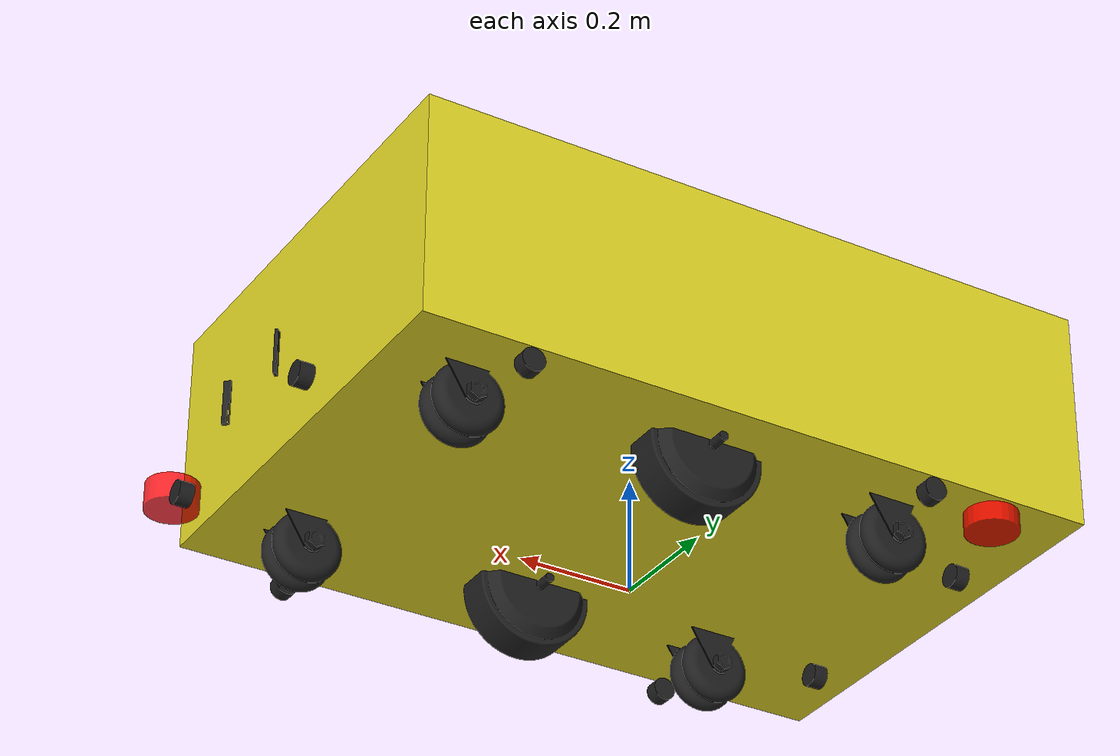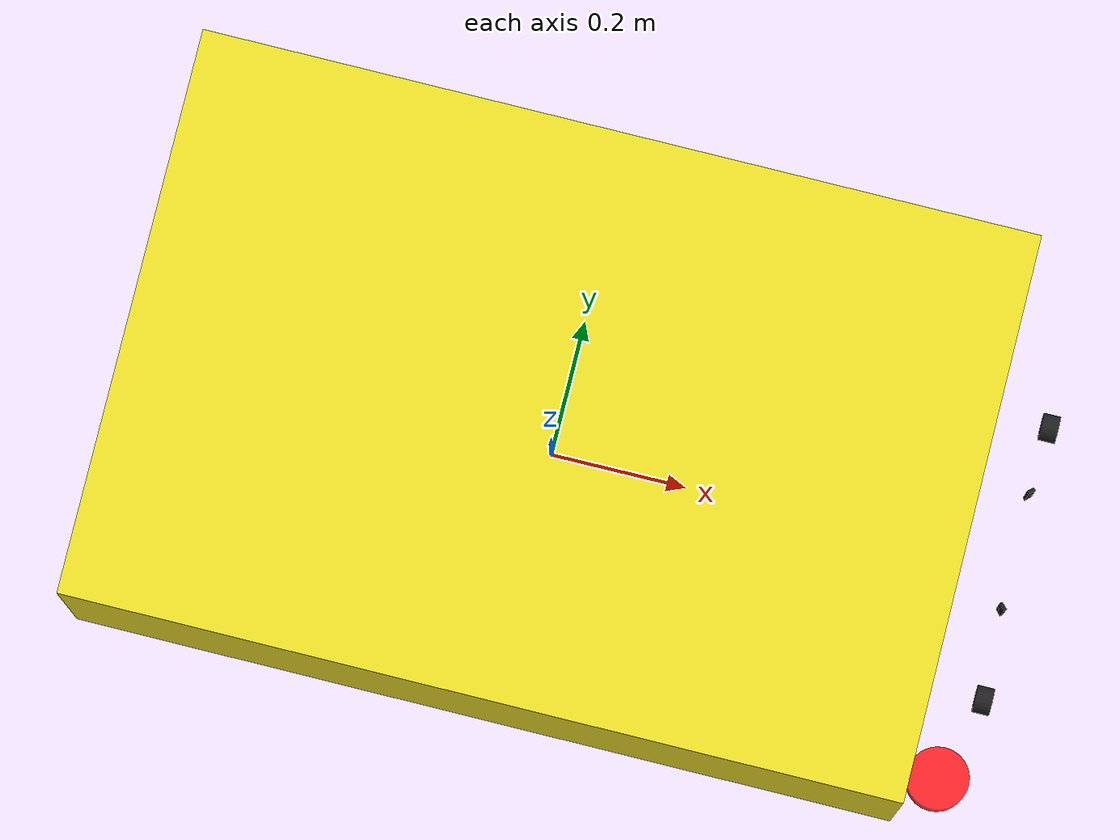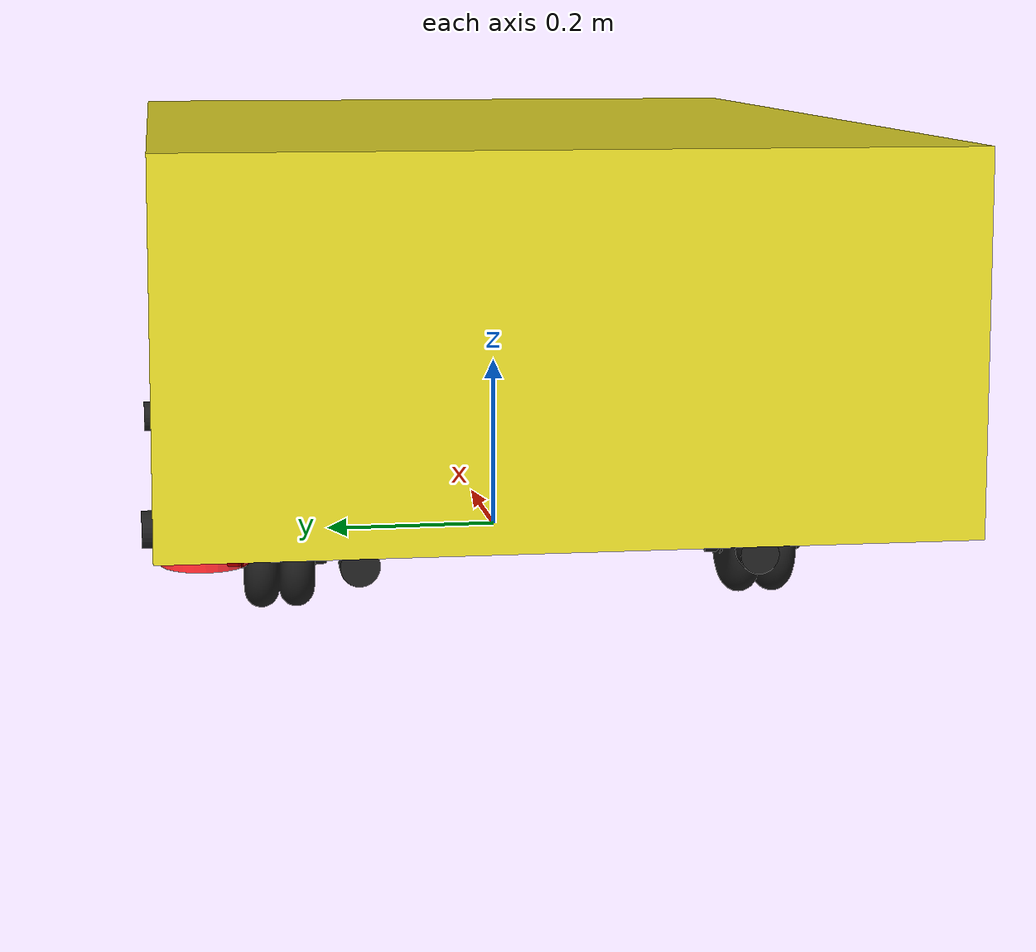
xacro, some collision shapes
<?xml version="1.0"?>
<robot name="trailobot" xmlns:xacro="http://www.ros.org/wiki/xacro">

  <xacro:arg name="GAZEBO" default="false"/>
  <xacro:arg name="wheel_odom_topic" default="odom" />
  <xacro:arg name="odometry_source" default="world" />

  <xacro:property name="odometry_source" value="$(arg odometry_source)"/>

  <!-- Includes -->
  <xacro:include filename="$(find trailobot_description)/urdf/material.xacro"/>
  <xacro:include filename="$(find trailobot_description)/urdf/const.xacro"/>
  <xacro:include filename="$(find trailobot_description)/urdf/inertia.xacro"/>
  <xacro:include filename="$(find trailobot_description)/urdf/wheel.xacro"/>
  <xacro:include filename="$(find trailobot_description)/urdf/wheel_caster.xacro"/>
  <xacro:include filename="$(find trailobot_description)/urdf/transmission.xacro"/>
  <xacro:include filename="$(find trailobot_description)/urdf/lidar.xacro"/>
  <xacro:include filename="$(find trailobot_description)/urdf/camera.xacro"/>
  <xacro:include filename="$(find trailobot_description)/urdf/ultrasonic.xacro"/>

  <xacro:if value="$(arg GAZEBO)">
    <xacro:include filename="$(find trailobot_description)/urdf/gazebo.xacro"/>
    <xacro:gz_plugins prefix="trailobot"/>
  </xacro:if>
  <xacro:unless value="$(arg GAZEBO)">
		<xacro:include filename="$(find trailobot_description)/urdf/ros2_control.xacro"/>
	</xacro:unless>

  <!-- ................................ BASE LINK .................................. -->
  <link name="base_footprint"/>

  <link name="base_link"/>

  <joint name="base_joint" type="fixed">
      <parent link="base_footprint"/>
      <child link="base_link"/>
      <origin xyz="0.0 0 ${base_height/2 + wheel_radius}" rpy="0 0 0.0" />
  </joint>

  <link name="cover_link">
      <visual>
      <origin xyz="0 0 0.0" rpy="0 0 0"/>
      <geometry>
        <box size="${base_length-0.1} ${base_width-0.02} 0.05"/>
      </geometry>
      <material name="black"/>
    </visual>
    <collision>
      <origin xyz="0 0 0" rpy="0 0 0"/>
      <geometry>
        <box size="${base_length} ${base_width-0.1} 0.02"/>
      </geometry>
    </collision>
    <xacro:box_inertia m="${mass_base}" x="${base_width/2}" y="${base_length/2}" z="${base_height/2}"/>
  </link>

  <joint name="cover_joint" type="fixed">
      <parent link="base_link"/>
      <child link="cover_link"/>
      <origin xyz="0.03 0 ${base_height/2 - 0.15}" rpy="0 0 0.0" />
  </joint>
  <!-- Base Link (main body with STL mesh) -->
  <link name="chassis_link">
    <visual>
      <origin xyz="-0.15 -0.15 0.0" rpy="${-PI/2.0} ${-PI/2.0} ${-PI/2.0}"/>
      <geometry>
        <mesh filename="file://$(find trailobot_description)/meshes/base_link.stl" scale="0.001 0.001 0.001"/>
      </geometry>
      <material name="yellow"/>
    </visual>
    <collision>
      <origin xyz="0 0 0" rpy="0 0 0"/>
      <geometry>
        <box size="${base_length} ${base_width} ${base_height}"/>
      </geometry>
    </collision>
    <xacro:box_inertia m="${mass_base}" x="${base_width/2}" y="${base_length/2}" z="${base_height/2}"/>
  </link>

  <joint name="chassis_joint" type="fixed">
      <parent link="base_link"/>
      <child link="chassis_link"/>
      <origin xyz="0.0 0 0" rpy="0 0 0.0" />
  </joint>

  <joint name="imu_joint" type="fixed">
		<parent link="base_link"/>
		<child link="imu_link"/>
		<origin rpy="0 0 0" xyz="0 0 0"/>
	</joint>

	<link name="imu_link">
		<inertial>
			<mass value="0.001"/>
			<origin rpy="0 0 0" xyz="0 0 0"/>
			<inertia ixx="0.0001" ixy="0" ixz="0" iyy="0.0001" iyz="0" izz="0.0001"/>
		</inertial>
		<visual>
			<origin rpy="0 0 0" xyz="0 0 0"/>
			<geometry>
				<box size="0.001 0.001 0.001"/>
			</geometry>
			<material name="red"/>
		</visual>
		<collision>
			<origin rpy="0 0 0" xyz="0 0 0"/>
			<geometry>
				<box size=".001 .001 .001"/>
			</geometry>
		</collision>
	</link>

  <!-- Wheels (STL-based, mirrored inside wheel.xacro) -->
  <xacro:wheel name="left_wheel"
               x_reflect="1"
               y_reflect="1"/>
  <xacro:wheel name="right_wheel"
               x_reflect="1"
               y_reflect="-1"/>

  <!-- Transmissions for left and right wheels -->
  <xacro:transmission name="left_wheel" joint_name="left_wheel_joint" actuator_name="left_wheel_motor"/>
  <xacro:transmission name="right_wheel" joint_name="right_wheel_joint" actuator_name="right_wheel_motor"/>

  <xacro:caster name="caster_fl" origin_x="${base_length/2 - caster_wheel_xoff}" origin_y="${caster_track_width/2}" origin_z="-${caster_wheel_radius+base_height/2}"/>
  <xacro:caster name="caster_fr" origin_x="${base_length/2 - caster_wheel_xoff}" origin_y="-${caster_track_width/2-0.02}" origin_z="-${caster_wheel_radius+base_height/2}"/>
  <xacro:caster name="caster_bl" origin_x="-${base_length/2 - 1.9*caster_wheel_xoff}" origin_y="${caster_track_width/2 }" origin_z="-${caster_wheel_radius+base_height/2+0.01}"/>
  <xacro:caster name="caster_br" origin_x="-${base_length/2 - 1.9*caster_wheel_xoff}" origin_y="-${caster_track_width/2 -0.02}" origin_z="-${caster_wheel_radius+base_height/2+0.01}"/>

  <xacro:lidar name="LidarFR"/>
  <xacro:lidar name="LidarBL"/>

  <xacro:camera name="CameraFR"/>
  <xacro:camera name="CameraFL"/>

  <xacro:ultrasonic name="ultraFL"/>
  <xacro:ultrasonic name="ultraFR"/>
  <xacro:ultrasonic name="ultraLF"/>
  <xacro:ultrasonic name="ultraLB"/>
  <xacro:ultrasonic name="ultraBL"/>
  <xacro:ultrasonic name="ultraBR"/>
  <xacro:ultrasonic name="ultraRB"/>
  <xacro:ultrasonic name="ultraRF"/>
</robot>

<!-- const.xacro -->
<robot xmlns:xacro="http://www.ros.org/wiki/xacro">
    <xacro:property name="PI" value="3.141592653589793"/>

    <!-- Kinematics -->
    <xacro:property name="wheel_radius" value="0.1"/>
    <xacro:property name="wheel_width" value="0.25"/>
    <xacro:property name="base_width" value="0.812"/>
    <xacro:property name="base_length" value="1.2"/>
    <xacro:property name="base_height" value="0.388"/>
    <xacro:property name="caster_xoff" value="0.155"/>
    <xacro:property name="wheel_ygap" value="-0.135"/>
    <xacro:property name="wheel_zoff" value="0.2"/>
    <xacro:property name="wheel_xoff" value="0.0436"/>
    <xacro:property name="wheel_separation" value="0.8"/>

    <xacro:property name="caster_wheel_mass" value="0.5"/>
    <xacro:property name="caster_track_width" value="0.54"/>
    <xacro:property name="caster_wheel_friction" value="0.0"/>
    <xacro:property name="caster_wheel_radius" value="0.05"/>
    <xacro:property name="caster_wheel_width" value="0.05"/>
    <xacro:property name="caster_wheel_zoff" value="0.02"/>
    <xacro:property name="caster_wheel_xoff" value="0.15"/>
    <xacro:property name="caster_wheel_yoff" value="-0.02"/>

    <!-- Sensor -->
    <xacro:property name="imu_height" value="0.05"/>
    <xacro:property name="imu_offset" value="0.0"/>

    <xacro:property name="two_d_lidar_min_range" value="0.15"/>
    <xacro:property name="two_d_lidar_max_range" value="7"/>
    <xacro:property name="two_d_lidar_update_rate" value="30"/>

    <xacro:property name="lidar_length" value="0.045"/>
    <xacro:property name="lidar_radius" value="0.045"/>
    <xacro:property name="lidarFR_min_angle" value="0"/>
    <xacro:property name="lidarFR_max_angle" value="360"/>
    <xacro:property name="lidarBL_min_angle" value="-0"/>
    <xacro:property name="lidarBL_max_angle" value="360"/>

    <xacro:property name="lidarFR_frame_id" value="lidarFR_link"/>
    <xacro:property name="lidarBL_frame_id" value="lidarBL_link"/>
    <xacro:property name="cameraFR_frame_id" value="cameraFR_link"/>
    <xacro:property name="cameraFL_frame_id" value="cameraFL_link"/>

    <xacro:property name="realsense_width" value="0.09"/>
    <xacro:property name="realsense_length" value="0.025"/>
    <xacro:property name="realsense_height" value="0.025"/>

    <xacro:property name="ultrasonic_radius" value="0.02"/>
    <xacro:property name="ultrasonic_length" value="0.025"/>

    <!-- Define inertial properties  -->
    <xacro:property name="mass_base" value="20.0"/>
    <xacro:property name="mass_wheel" value="4.0"/>
    <xacro:property name="mass_caster" value="0.5"/>
    <xacro:property name="mass_imu" value="0.001"/>
    <xacro:property name="mass_lidarFR" value="0.5"/>
    <xacro:property name="mass_lidarBL" value="0.5"/>
    <xacro:property name="mass_realsense" value="0.072"/>

</robot>

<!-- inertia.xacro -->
<robot xmlns:xacro="http://ros.org/wiki/xacro">
    <xacro:include filename="$(find trailobot_description)/urdf/const.xacro"/>
    <!--................................ INERTIA MATRICES .............................. -->

    <xacro:macro name="cylinder_inertia" params="m r h">
        <inertia ixx="${m * (3 * r * r + h * h) / 12}" ixy="0" ixz="0" iyy="${m * (3 * r * r + h * h) / 12}" iyz="0" izz="${m * r * r / 2}" />
    </xacro:macro>

    <xacro:macro name="box_inertia" params="m x y z">
        <inertia ixx="${m * (y * y + z * z) / 12}" ixy="0" ixz="0" iyy="${m * (x * x + z * z) / 12}" iyz="0" izz="${m * (y * y + x * x) / 12}" />
    </xacro:macro>

    <xacro:macro name="sphere_inertia" params="m r">
        <inertia ixx="${0.4 * m * r * r}" ixy="0" ixz="0"
             iyy="${0.4 * m * r * r}" iyz="0"
             izz="${0.4 * m * r * r}" />
    </xacro:macro>

    <!-- Wheel Inertia (rotated cylinder, longitudinal axis along Y) -->
    <xacro:macro name="wheel_inertia" params="m:=${mass_wheel} r:=${wheel_radius} h:=${wheel_width}">
        <inertial>
            <origin xyz="0 0 0" rpy="${PI/2} 0 0"/>
            <mass value="${m}"/>
            <inertia
                ixx="${m * (3*r*r + h*h) / 12}"
                ixy="0.0"
                ixz="0.0"
                iyy="${m * r*r / 2}"
                iyz="0.0"
                izz="${m * (3*r*r + h*h) / 12}"
            />
        </inertial>
    </xacro:macro>

</robot>

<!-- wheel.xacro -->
<robot xmlns:xacro="http://ros.org/wiki/xacro">
  <xacro:macro name="wheel" params="name x_reflect y_reflect">
    <link name="${name}_link">
      <visual>
        <xacro:if value="${name == 'right_wheel'}">
          <origin xyz="0.18 0.44 -0.196" rpy="0 0 0"/>
          <geometry>
            <mesh filename="file://$(find trailobot_description)/meshes/motor_wheel_2.stl" scale="0.001 0.001 0.001"/>
          </geometry>
          <material name="black"/>
        </xacro:if>
        <xacro:if value="${name == 'left_wheel'}">
          <origin xyz="0.18 -0.1 -0.196" rpy="0 0 0"/>
          <geometry>
            <mesh filename="file://$(find trailobot_description)/meshes/motor_wheel_1.stl" scale="0.001 0.001 0.001"/>
          </geometry>
          <material name="black"/>
        </xacro:if>
      </visual>
      <collision>
          <origin xyz="0 0 0" rpy="${pi/2} 0 0"/>
          <geometry>
              <cylinder radius="${wheel_radius}" length="${wheel_width}"/>
          </geometry>
      </collision>
      <xacro:wheel_inertia/>
    </link>

    <joint name="${name}_joint" type="continuous">
      <origin xyz="${x_reflect*wheel_xoff} ${y_reflect*(base_width/2+wheel_ygap)} ${-wheel_zoff}" rpy="0 0 0"/>
      <parent link="base_link"/>
      <child link="${name}_link"/>
      <axis xyz="0.0 1.0 0.0"/>
      <dynamics damping="0.7"/>
    </joint>
    <gazebo reference="${name}_link">
        <material>Gazebo/Black</material>
        <mu1>10.0</mu1>
        <mu2>10.0</mu2>
        <kp>100000</kp>
        <kd>10</kd>
        <self_collide>1</self_collide>
    </gazebo>
  </xacro:macro>
</robot>

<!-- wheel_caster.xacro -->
<robot xmlns:xacro="http://ros.org/wiki/xacro">
  <xacro:macro name="caster" params="name origin_x origin_y origin_z">
    <link name="${name}_link">
      <visual>
        <origin xyz="0.49 -0.306 -0.024" rpy="${PI/2} 0 0"/>
        <geometry>
          <mesh filename="file://$(find trailobot_description)/meshes/front_caster_1.stl" scale="0.0012 0.0012 0.0012"/>
        </geometry>
        <geometry>
              <sphere radius="${caster_wheel_radius}" />
          </geometry>
        <material name="black"/>
      </visual>
      <collision>
          <origin xyz="0 0 0" rpy="0 ${pi/2} ${pi/2}"/>
          <geometry>
              <sphere radius="${caster_wheel_radius}" />
          </geometry>
          <surface>
            <friction>
              <ode>
                <mu1>0.0</mu1>  <!-- Friction coefficient (adjust if needed) -->
                <mu2>0.0</mu2>
              </ode>
            </friction>
          </surface>
      </collision>
      <inertial>
          <origin xyz="0 0 0" rpy="0 0 0" />
          <mass value="${caster_wheel_mass}"/>
          <xacro:sphere_inertia m="${caster_wheel_mass}" r="${caster_wheel_radius}" />
      </inertial>

    </link>

    <joint name="${name}_joint" type="fixed">
      <parent link="base_link"/>
      <child link="${name}_link"/>
      <origin xyz="${origin_x} ${origin_y} ${origin_z}" rpy="0 0 0"/>
      <axis xyz="0 1 0" rpy="0 0 0" />
    </joint>

    <gazebo reference="${name}_link">
        <material>Gazebo/Black</material>
    </gazebo>
  </xacro:macro>
</robot>

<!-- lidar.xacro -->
<robot xmlns:xacro="http://ros.org/wiki/xacro">
  <xacro:macro name="lidar" params="name">
    <link name="${name}_link">
        <inertial>
            <origin xyz="0 0 0" rpy="0 0 0"/>
            <mass value="0.125"/>
            <inertia ixx="0.001" ixy="0" ixz="0" iyy="0.001" iyz="0" izz="0.001" />
        </inertial>

        <collision>
            <origin xyz="0 0 0" rpy="0 0 0"/>
            <geometry>
            <cylinder radius="${lidar_radius}" length="${lidar_length}"/>
            </geometry>
        </collision>

        <visual>
            <origin xyz="0 0 0" rpy="0 0 0"/>
            <geometry>
                <cylinder radius="${lidar_radius}" length="${lidar_length}"/>
            </geometry>
            <material name="Red">
                <color rgba="1 0 0.0 0.8"/>
            </material>
        </visual>
    </link>

    <joint name="${name}_joint" type="fixed">
        <parent link="base_link"/>
        <child link="${name}_link"/>
        <xacro:if value="${name == 'LidarFR'}">
          <origin xyz="${0.5*base_length + 0.05} ${-0.4*base_width -0.01} ${-base_height/2 + 0.04}" rpy="0 0 0"/>
        </xacro:if>
        <xacro:if value="${name == 'LidarBL'}">
          <origin xyz="${-0.37*base_length - 0.01} ${0.4*base_width+0.03} ${-base_height/2 - 0.01}" rpy="0 0 ${PI}"/>
        </xacro:if>
    </joint>
  </xacro:macro>
</robot>

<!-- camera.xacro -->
<robot xmlns:xacro="http://ros.org/wiki/xacro">
    <xacro:macro name="camera" params="name">
        <link name="${name}_link">
            <visual>
                <origin xyz="0 0 0" rpy="1.57 0.0 0"/>
                <geometry>
                    <mesh filename="file://$(find trailobot_description)/meshes/d415.dae" scale="0.6 0.6 0.6"/>
                </geometry>
                <material name="black"/>
            </visual>

            <collision>
                <origin xyz="0 0 0" rpy="0 0 0"/>
                <geometry>
                <box size="${realsense_length} ${realsense_width} ${realsense_height}"/>
                </geometry>
            </collision>

            <inertial>
                <origin xyz="0 0 0" rpy="0 0 0"/>
                <mass value="${mass_realsense}"/>
                <inertia ixx="0.001" ixy="0" ixz="0" iyy="0.001" iyz="0" izz="0.001" />
            </inertial>
        </link>

        <joint name="${name}_joint" type="fixed">
            <parent link="base_link"/>
            <child link="${name}_link"/>
            <xacro:if value="${name == 'CameraFR'}">
                <origin xyz="${0.55*base_length+0.02} -0.08 -0.12" rpy="0 0 0.785398"/>
            </xacro:if>
            <xacro:if value="${name == 'CameraFL'}">
                <origin xyz="${0.55*base_length+0.02} 0.09 -0.12" rpy="0 0 -0.785398"/>
            </xacro:if>
        </joint>
    </xacro:macro>
</robot>

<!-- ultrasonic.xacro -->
<robot xmlns:xacro="http://ros.org/wiki/xacro">
  <xacro:macro name="ultrasonic" params="name">
    <link name="${name}_link">
        <inertial>
            <origin xyz="0 0 0" rpy="${PI/2} 0 0"/>
            <mass value="0.1"/>
            <inertia ixx="0.001" ixy="0" ixz="0" iyy="0.001" iyz="0" izz="0.001" />
        </inertial>

        <collision>
            <origin xyz="0 0 0" rpy="${PI/2} 0 0"/>
            <geometry>
                <cylinder radius="${ultrasonic_radius}" length="${ultrasonic_length}"/>
            </geometry>
        </collision>

        <visual>
            <origin xyz="0 0 0" rpy="${PI/2} 0 0"/>
            <geometry>
                <cylinder radius="${ultrasonic_radius}" length="${ultrasonic_length}"/>
            </geometry>
            <material name="black"/>
        </visual>
    </link>

    <joint name="${name}_joint" type="fixed">
        <parent link="base_link"/>
        <child link="${name}_link"/>
        <xacro:if value="${name == 'ultraFL'}">
          <origin xyz="${base_length/2 + 0.09} ${-0.25*base_width} ${-base_height/2-0.03}" rpy="0 0 ${3*PI/2}"/>
        </xacro:if>
        <xacro:if value="${name == 'ultraFR'}">
          <origin xyz="${base_length/2 + 0.09} ${0.25*base_width} ${-base_height/2-0.03}" rpy="0 0 ${3*PI/2}"/>
        </xacro:if>
        <xacro:if value="${name == 'ultraRF'}">
          <origin xyz="${0.35*base_length} ${-0.5*base_width+0.02} ${-base_height/2-0.03}" rpy="0 0 ${PI}"/>
        </xacro:if>
        <xacro:if value="${name == 'ultraRB'}">
          <origin xyz="${-0.25*base_length} ${-0.5*base_width+0.02} ${-base_height/2-0.03}" rpy="0 0 ${PI}"/>
        </xacro:if>
        <xacro:if value="${name == 'ultraBR'}">
          <origin xyz="${-0.37*base_length - 0.05} ${-0.25*base_width} ${-base_height/2-0.03}" rpy="0 0 ${PI/2}"/>
        </xacro:if>
        <xacro:if value="${name == 'ultraBL'}">
          <origin xyz="${-0.37*base_length - 0.05} ${0.25*base_width} ${-base_height/2-0.03}" rpy="0 0 ${PI/2}"/>
        </xacro:if>
        <xacro:if value="${name == 'ultraLB'}">
          <origin xyz="${-0.25*base_length} ${0.5*base_width} ${-base_height/2-0.03}" rpy="0 0 0"/>
        </xacro:if>
        <xacro:if value="${name == 'ultraLF'}">
          <origin xyz="${0.35*base_length} ${0.5*base_width} ${-base_height/2-0.03}" rpy="0 0 0"/>
        </xacro:if>
    </joint>

  </xacro:macro>
</robot>
